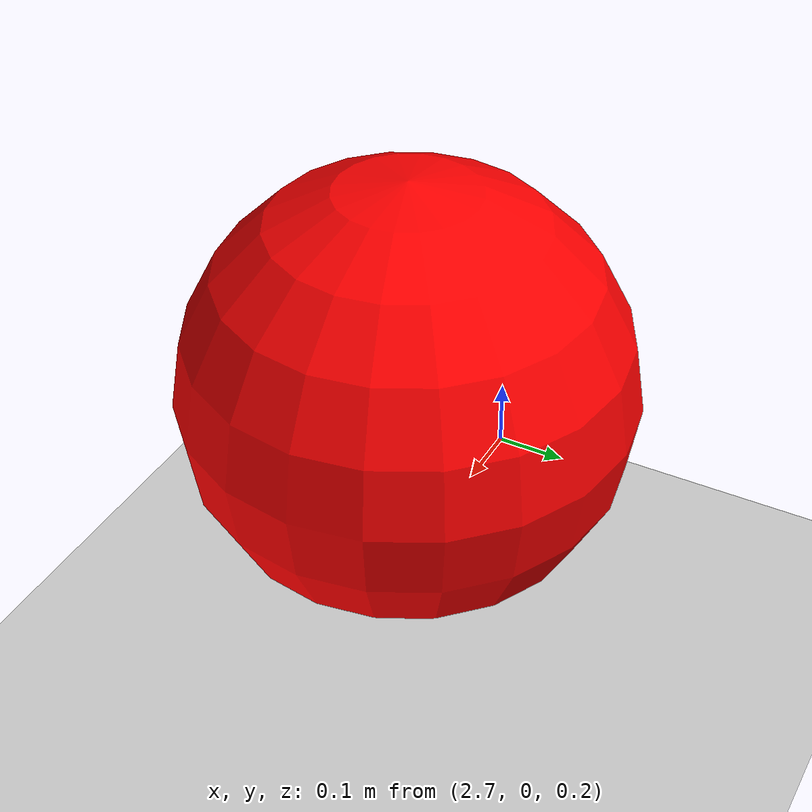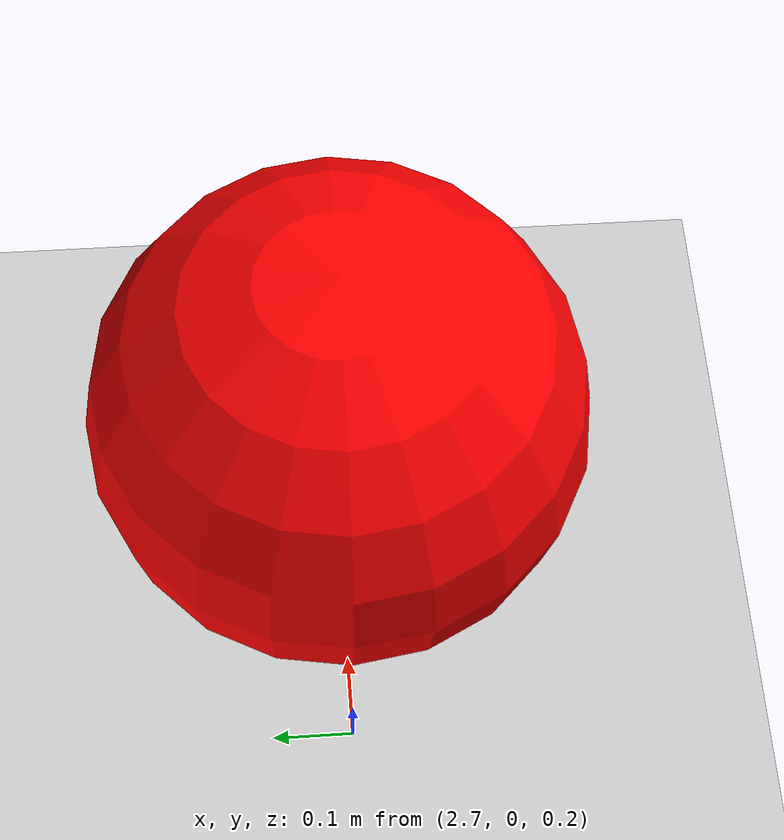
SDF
<?xml version="1.0" ?>
<sdf version="1.9">
  <world name="default">
    <!-- Physics -->
    <physics name="1ms" type="ignored">
      <max_step_size>0.001</max_step_size>
      <real_time_factor>1.0</real_time_factor>
    </physics>

    <!-- Plugin for the physics engine -->
    <plugin filename="gz-sim-physics-system" name="gz::sim::systems::Physics">
    </plugin>

    <!-- Plugin for the user commands (interaction) -->
    <plugin filename="gz-sim-user-commands-system" name="gz::sim::systems::UserCommands">
    </plugin>

    <!-- Plugin for the scene manager -->
    <plugin filename="gz-sim-scene-broadcaster-system" name="gz::sim::systems::SceneBroadcaster">
    </plugin>

    <!-- Sun -->
    <light type="directional" name="sun">
      <cast_shadows>true</cast_shadows>
      <pose>0 0 10 0 0 0</pose>
      <diffuse>0.8 0.8 0.8 1</diffuse>
      <specular>0.2 0.2 0.2 1</specular>
      <attenuation>
        <range>1000</range>
        <constant>0.9</constant>
        <linear>0.01</linear>
        <quadratic>0.001</quadratic>
      </attenuation>
      <direction>-0.5 0.1 -0.9</direction>
    </light>

    <!-- Ground plane -->
    <model name="ground_plane">
      <static>true</static>
      <link name="link">
        <collision name="collision">
          <geometry>
            <plane>
              <normal>0 0 1</normal>
              <size>100 100</size>
            </plane>
          </geometry>
        </collision>
        <visual name="visual">
          <geometry>
            <plane>
              <normal>0 0 1</normal>
              <size>100 100</size>
            </plane>
          </geometry>
          <material>
            <ambient>0.8 0.8 0.8 1</ambient>
            <diffuse>0.8 0.8 0.8 1</diffuse>
            <specular>0.8 0.8 0.8 1</specular>
          </material>
        </visual>
      </link>
    </model>

    <!--Target ball model -->
    <model name="target_ball">
      <pose>3.0 0 0.5 0 0 0</pose>
      <static>false</static>
      <link name="ball_link">
        <inertial>
          <mass>1.0</mass>
        </inertial>
        <collision name="collision">
          <geometry>
            <sphere>
              <radius>0.3</radius>
            </sphere>
          </geometry>
        </collision>
        <visual name="ball_visual">
          <geometry>
            <sphere>
              <radius>0.3</radius>
            </sphere>
          </geometry>
          <material>
            <ambient>1.0 0 0 1</ambient>
            <diffuse>1 0 0 1</diffuse>
          </material>
        </visual>
      </link>
    </model>
  </world>
</sdf>
